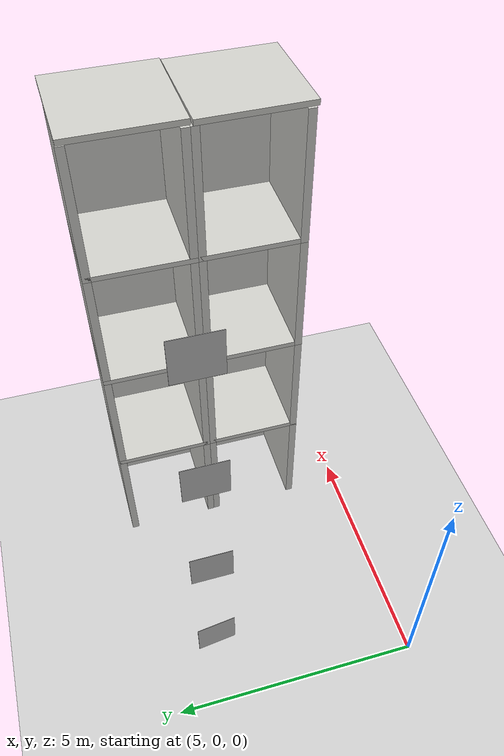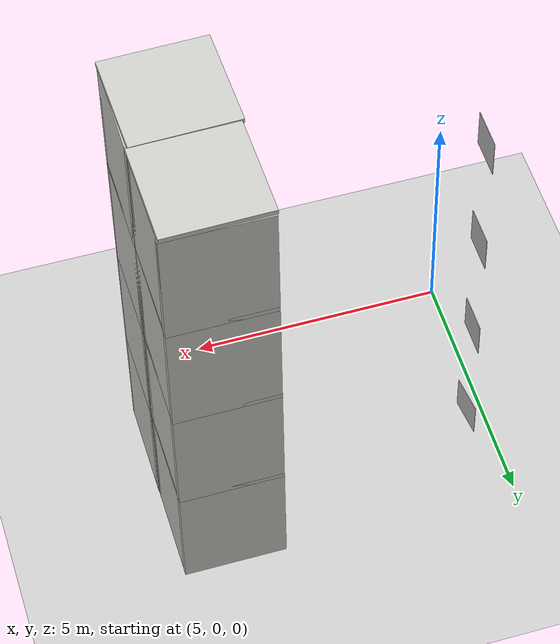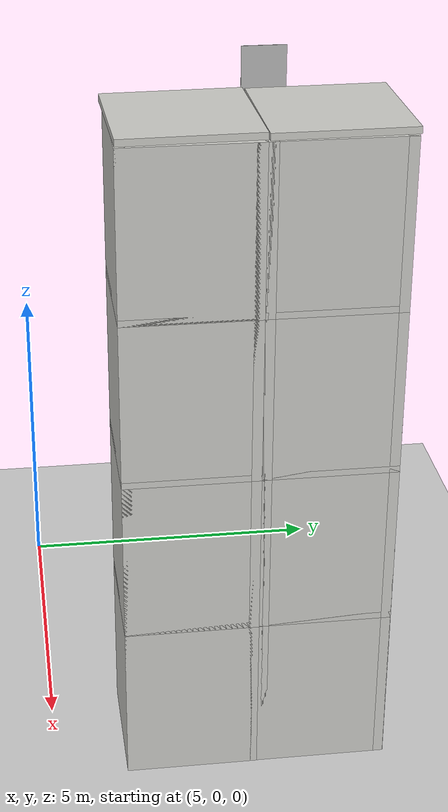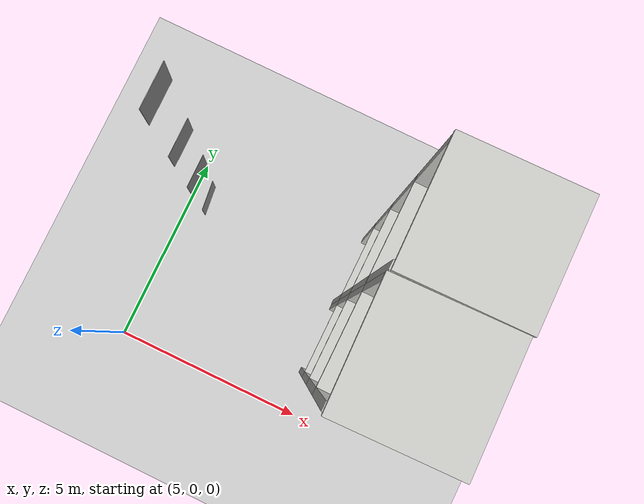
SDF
<sdf version="1.7">
 <world name="default">
  <model name="ground_plane">
   <static>1</static>
   <link name="link">
    <collision name="collision">
     <geometry><plane><normal>0 0 1</normal><size>100 100</size></plane></geometry>
     <surface>
      <contact><collide_bitmask>65535</collide_bitmask></contact>
      <friction><ode><mu>100</mu><mu2>50</mu2></ode></friction>
     </surface>
    </collision>
    <visual name="visual">
     <cast_shadows>0</cast_shadows>
     <geometry><plane><normal>0 0 1</normal><size>100 100</size></plane></geometry>
     <material>
      <script><uri>file://media/materials/scripts/gazebo.material</uri><name>Gazebo/Grey</name></script>
     </material>
    </visual>
   </link>
  </model>
  <model name="twin_4th_building_clone_clone_1">
   <link name="Floor_1">
    <pose>-1.9225 -0.6325 2.5 0 -0 0</pose>
    <visual name="Floor_1_Visual">
     <pose>0 0 0.05 0 -0 0</pose>
     <geometry><box><size>2 2 0.1</size></box></geometry>
     <material>
      <script><uri>file://media/materials/scripts/gazebo.material</uri><name>Gazebo/CeilingTiled</name></script>
      <ambient>1 1 1 1</ambient>
      <shader type="pixel"/>
      <emissive>0 0 0 1</emissive>
     </material>
     <meta><layer>1</layer></meta>
    </visual>
    <collision name="Floor_1_Collision">
     <pose>0 0 0.05 0 -0 0</pose>
     <geometry><box><size>2 2 0.1</size></box></geometry>
     <surface>
      <friction>
       <ode><mu>1</mu><mu2>1</mu2><fdir1>0 0 0</fdir1><slip1>0</slip1><slip2>0</slip2></ode>
       <torsional>
        <coefficient>1</coefficient>
        <patch_radius>0</patch_radius>
        <surface_radius>0</surface_radius>
        <use_patch_radius>1</use_patch_radius>
        <ode><slip>0</slip></ode>
       </torsional>
      </friction>
      <bounce><restitution_coefficient>0</restitution_coefficient><threshold>1e+06</threshold></bounce>
      <contact>
       <collide_without_contact>0</collide_without_contact>
       <collide_without_contact_bitmask>1</collide_without_contact_bitmask>
       <collide_bitmask>1</collide_bitmask>
       <ode>
        <soft_cfm>0</soft_cfm>
        <soft_erp>0.2</soft_erp>
        <kp>1e+13</kp>
        <kd>1</kd>
        <max_vel>0.01</max_vel>
        <min_depth>0</min_depth>
       </ode>
       <bullet>
        <split_impulse>1</split_impulse>
        <split_impulse_penetration_threshold>-0.01</split_impulse_penetration_threshold>
        <soft_cfm>0</soft_cfm>
        <soft_erp>0.2</soft_erp>
        <kp>1e+13</kp>
        <kd>1</kd>
       </bullet>
      </contact>
     </surface>
    </collision>
   </link>
   <link name="Floor_10">
    <pose>-1.9225 -0.6325 7.5 0 -0 0</pose>
    <visual name="Floor_10_Visual">
     <pose>0 0 0.05 0 -0 0</pose>
     <geometry><box><size>2 2 0.1</size></box></geometry>
     <material>
      <script><uri>file://media/materials/scripts/gazebo.material</uri><name>Gazebo/CeilingTiled</name></script>
      <ambient>1 1 1 1</ambient>
      <shader type="pixel"/>
      <emissive>0 0 0 1</emissive>
     </material>
     <meta><layer>3</layer></meta>
    </visual>
    <collision name="Floor_10_Collision">
     <pose>0 0 0.05 0 -0 0</pose>
     <geometry><box><size>2 2 0.1</size></box></geometry>
     <surface>
      <friction>
       <ode><mu>1</mu><mu2>1</mu2><fdir1>0 0 0</fdir1><slip1>0</slip1><slip2>0</slip2></ode>
       <torsional>
        <coefficient>1</coefficient>
        <patch_radius>0</patch_radius>
        <surface_radius>0</surface_radius>
        <use_patch_radius>1</use_patch_radius>
        <ode><slip>0</slip></ode>
       </torsional>
      </friction>
      <bounce><restitution_coefficient>0</restitution_coefficient><threshold>1e+06</threshold></bounce>
      <contact>
       <collide_without_contact>0</collide_without_contact>
       <collide_without_contact_bitmask>1</collide_without_contact_bitmask>
       <collide_bitmask>1</collide_bitmask>
       <ode>
        <soft_cfm>0</soft_cfm>
        <soft_erp>0.2</soft_erp>
        <kp>1e+13</kp>
        <kd>1</kd>
        <max_vel>0.01</max_vel>
        <min_depth>0</min_depth>
       </ode>
       <bullet>
        <split_impulse>1</split_impulse>
        <split_impulse_penetration_threshold>-0.01</split_impulse_penetration_threshold>
        <soft_cfm>0</soft_cfm>
        <soft_erp>0.2</soft_erp>
        <kp>1e+13</kp>
        <kd>1</kd>
       </bullet>
      </contact>
     </surface>
    </collision>
   </link>
   <link name="Floor_10_clone">
    <pose>-1.91647 -0.637292 10.0203 0 0 -1.55375</pose>
    <visual name="Floor_10_Visual">
     <pose>0 0 0.05 0 -0 0</pose>
     <geometry><box><size>2 2 0.1</size></box></geometry>
     <material>
      <script><uri>file://media/materials/scripts/gazebo.material</uri><name>Gazebo/CeilingTiled</name></script>
      <ambient>1 1 1 1</ambient>
      <shader type="pixel"/>
      <emissive>0 0 0 1</emissive>
     </material>
     <meta><layer>3</layer></meta>
    </visual>
    <collision name="Floor_10_Collision">
     <pose>0 0 0.05 0 -0 0</pose>
     <geometry><box><size>2 2 0.1</size></box></geometry>
     <surface>
      <friction>
       <ode><mu>1</mu><mu2>1</mu2><fdir1>0 0 0</fdir1><slip1>0</slip1><slip2>0</slip2></ode>
       <torsional>
        <coefficient>1</coefficient>
        <patch_radius>0</patch_radius>
        <surface_radius>0</surface_radius>
        <use_patch_radius>1</use_patch_radius>
        <ode><slip>0</slip></ode>
       </torsional>
      </friction>
      <bounce><restitution_coefficient>0</restitution_coefficient><threshold>1e+06</threshold></bounce>
      <contact>
       <collide_without_contact>0</collide_without_contact>
       <collide_without_contact_bitmask>1</collide_without_contact_bitmask>
       <collide_bitmask>1</collide_bitmask>
       <ode>
        <soft_cfm>0</soft_cfm>
        <soft_erp>0.2</soft_erp>
        <kp>1e+13</kp>
        <kd>1</kd>
        <max_vel>0.01</max_vel>
        <min_depth>0</min_depth>
       </ode>
       <bullet>
        <split_impulse>1</split_impulse>
        <split_impulse_penetration_threshold>-0.01</split_impulse_penetration_threshold>
        <soft_cfm>0</soft_cfm>
        <soft_erp>0.2</soft_erp>
        <kp>1e+13</kp>
        <kd>1</kd>
       </bullet>
      </contact>
     </surface>
    </collision>
   </link>
   <link name="Floor_10_clone_clone">
    <pose>-3.93376 -0.629613 10.0203 0 0 -3.11619</pose>
    <visual name="Floor_10_Visual">
     <pose>0 0 0.05 0 -0 0</pose>
     <geometry><box><size>2 2 0.1</size></box></geometry>
     <material>
      <script><uri>file://media/materials/scripts/gazebo.material</uri><name>Gazebo/CeilingTiled</name></script>
      <ambient>1 1 1 1</ambient>
      <shader type="pixel"/>
      <emissive>0 0 0 1</emissive>
     </material>
     <meta><layer>3</layer></meta>
    </visual>
    <collision name="Floor_10_Collision">
     <pose>0 0 0.05 0 -0 0</pose>
     <geometry><box><size>2 2 0.1</size></box></geometry>
     <surface>
      <friction>
       <ode><mu>1</mu><mu2>1</mu2><fdir1>0 0 0</fdir1><slip1>0</slip1><slip2>0</slip2></ode>
       <torsional>
        <coefficient>1</coefficient>
        <patch_radius>0</patch_radius>
        <surface_radius>0</surface_radius>
        <use_patch_radius>1</use_patch_radius>
        <ode><slip>0</slip></ode>
       </torsional>
      </friction>
      <bounce><restitution_coefficient>0</restitution_coefficient><threshold>1e+06</threshold></bounce>
      <contact>
       <collide_without_contact>0</collide_without_contact>
       <collide_without_contact_bitmask>1</collide_without_contact_bitmask>
       <collide_bitmask>1</collide_bitmask>
       <ode>
        <soft_cfm>0</soft_cfm>
        <soft_erp>0.2</soft_erp>
        <kp>1e+13</kp>
        <kd>1</kd>
        <max_vel>0.01</max_vel>
        <min_depth>0</min_depth>
       </ode>
       <bullet>
        <split_impulse>1</split_impulse>
        <split_impulse_penetration_threshold>-0.01</split_impulse_penetration_threshold>
        <soft_cfm>0</soft_cfm>
        <soft_erp>0.2</soft_erp>
        <kp>1e+13</kp>
        <kd>1</kd>
       </bullet>
      </contact>
     </surface>
    </collision>
   </link>
   <link name="Floor_9">
    <pose>-1.9225 -0.6325 5 0 -0 0</pose>
    <visual name="Floor_9_Visual">
     <pose>0 0 0.05 0 -0 0</pose>
     <geometry><box><size>2 2 0.1</size></box></geometry>
     <material>
      <script><uri>file://media/materials/scripts/gazebo.material</uri><name>Gazebo/CeilingTiled</name></script>
      <ambient>1 1 1 1</ambient>
      <shader type="pixel"/>
      <emissive>0 0 0 1</emissive>
     </material>
     <meta><layer>2</layer></meta>
    </visual>
    <collision name="Floor_9_Collision">
     <pose>0 0 0.05 0 -0 0</pose>
     <geometry><box><size>2 2 0.1</size></box></geometry>
     <surface>
      <friction>
       <ode><mu>1</mu><mu2>1</mu2><fdir1>0 0 0</fdir1><slip1>0</slip1><slip2>0</slip2></ode>
       <torsional>
        <coefficient>1</coefficient>
        <patch_radius>0</patch_radius>
        <surface_radius>0</surface_radius>
        <use_patch_radius>1</use_patch_radius>
        <ode><slip>0</slip></ode>
       </torsional>
      </friction>
      <bounce><restitution_coefficient>0</restitution_coefficient><threshold>1e+06</threshold></bounce>
      <contact>
       <collide_without_contact>0</collide_without_contact>
       <collide_without_contact_bitmask>1</collide_without_contact_bitmask>
       <collide_bitmask>1</collide_bitmask>
       <ode>
        <soft_cfm>0</soft_cfm>
        <soft_erp>0.2</soft_erp>
        <kp>1e+13</kp>
        <kd>1</kd>
        <max_vel>0.01</max_vel>
        <min_depth>0</min_depth>
       </ode>
       <bullet>
        <split_impulse>1</split_impulse>
        <split_impulse_penetration_threshold>-0.01</split_impulse_penetration_threshold>
        <soft_cfm>0</soft_cfm>
        <soft_erp>0.2</soft_erp>
        <kp>1e+13</kp>
        <kd>1</kd>
       </bullet>
      </contact>
     </surface>
    </collision>
   </link>
   <link name="Wall_13">
    <pose>-2.8475 -0.6325 0 0 0 -1.5708</pose>
    <visual name="Wall_13_Visual">
     <pose>0 0 1.25 0 -0 0</pose>
     <geometry><box><size>2 0.15 2.5</size></box></geometry>
     <material>
      <script><uri>file://media/materials/scripts/gazebo.material</uri><name>Gazebo/CeilingTiled</name></script>
      <ambient>1 1 1 1</ambient>
      <shader type="pixel"/>
      <emissive>0 0 0 1</emissive>
     </material>
     <meta><layer>0</layer></meta>
    </visual>
    <collision name="Wall_13_Collision">
     <pose>0 0 1.25 0 -0 0</pose>
     <geometry><box><size>2 0.15 2.5</size></box></geometry>
     <surface>
      <friction>
       <ode><mu>1</mu><mu2>1</mu2><fdir1>0 0 0</fdir1><slip1>0</slip1><slip2>0</slip2></ode>
       <torsional>
        <coefficient>1</coefficient>
        <patch_radius>0</patch_radius>
        <surface_radius>0</surface_radius>
        <use_patch_radius>1</use_patch_radius>
        <ode><slip>0</slip></ode>
       </torsional>
      </friction>
      <bounce><restitution_coefficient>0</restitution_coefficient><threshold>1e+06</threshold></bounce>
      <contact>
       <collide_without_contact>0</collide_without_contact>
       <collide_without_contact_bitmask>1</collide_without_contact_bitmask>
       <collide_bitmask>1</collide_bitmask>
       <ode>
        <soft_cfm>0</soft_cfm>
        <soft_erp>0.2</soft_erp>
        <kp>1e+13</kp>
        <kd>1</kd>
        <max_vel>0.01</max_vel>
        <min_depth>0</min_depth>
       </ode>
       <bullet>
        <split_impulse>1</split_impulse>
        <split_impulse_penetration_threshold>-0.01</split_impulse_penetration_threshold>
        <soft_cfm>0</soft_cfm>
        <soft_erp>0.2</soft_erp>
        <kp>1e+13</kp>
        <kd>1</kd>
       </bullet>
      </contact>
     </surface>
    </collision>
   </link>
   <link name="Wall_14">
    <pose>-1.9225 -1.5575 0 0 -0 0</pose>
    <visual name="Wall_14_Visual">
     <pose>0 0 1.25 0 -0 0</pose>
     <geometry><box><size>2 0.15 2.5</size></box></geometry>
     <material>
      <script><uri>file://media/materials/scripts/gazebo.material</uri><name>Gazebo/CeilingTiled</name></script>
      <ambient>1 1 1 1</ambient>
      <shader type="pixel"/>
     </material>
     <meta><layer>0</layer></meta>
    </visual>
    <collision name="Wall_14_Collision">
     <pose>0 0 1.25 0 -0 0</pose>
     <geometry><box><size>2 0.15 2.5</size></box></geometry>
     <surface>
      <friction>
       <ode><mu>1</mu><mu2>1</mu2><fdir1>0 0 0</fdir1><slip1>0</slip1><slip2>0</slip2></ode>
       <torsional>
        <coefficient>1</coefficient>
        <patch_radius>0</patch_radius>
        <surface_radius>0</surface_radius>
        <use_patch_radius>1</use_patch_radius>
        <ode><slip>0</slip></ode>
       </torsional>
      </friction>
      <bounce><restitution_coefficient>0</restitution_coefficient><threshold>1e+06</threshold></bounce>
      <contact>
       <collide_without_contact>0</collide_without_contact>
       <collide_without_contact_bitmask>1</collide_without_contact_bitmask>
       <collide_bitmask>1</collide_bitmask>
       <ode>
        <soft_cfm>0</soft_cfm>
        <soft_erp>0.2</soft_erp>
        <kp>1e+13</kp>
        <kd>1</kd>
        <max_vel>0.01</max_vel>
        <min_depth>0</min_depth>
       </ode>
       <bullet>
        <split_impulse>1</split_impulse>
        <split_impulse_penetration_threshold>-0.01</split_impulse_penetration_threshold>
        <soft_cfm>0</soft_cfm>
        <soft_erp>0.2</soft_erp>
        <kp>1e+13</kp>
        <kd>1</kd>
       </bullet>
      </contact>
     </surface>
    </collision>
   </link>
   <link name="Wall_15">
    <pose>-0.9975 -0.6325 0 0 -0 1.5708</pose>
    <visual name="Wall_15_Visual">
     <pose>0 0 1.25 0 -0 0</pose>
     <geometry><box><size>2 0.15 2.5</size></box></geometry>
     <material>
      <script><uri>file://media/materials/scripts/gazebo.material</uri><name>Gazebo/CeilingTiled</name></script>
      <ambient>1 1 1 1</ambient>
      <shader type="pixel"/>
     </material>
     <meta><layer>0</layer></meta>
    </visual>
    <collision name="Wall_15_Collision">
     <pose>0 0 1.25 0 -0 0</pose>
     <geometry><box><size>2 0.15 2.5</size></box></geometry>
     <surface>
      <friction>
       <ode><mu>1</mu><mu2>1</mu2><fdir1>0 0 0</fdir1><slip1>0</slip1><slip2>0</slip2></ode>
       <torsional>
        <coefficient>1</coefficient>
        <patch_radius>0</patch_radius>
        <surface_radius>0</surface_radius>
        <use_patch_radius>1</use_patch_radius>
        <ode><slip>0</slip></ode>
       </torsional>
      </friction>
      <bounce><restitution_coefficient>0</restitution_coefficient><threshold>1e+06</threshold></bounce>
      <contact>
       <collide_without_contact>0</collide_without_contact>
       <collide_without_contact_bitmask>1</collide_without_contact_bitmask>
       <collide_bitmask>1</collide_bitmask>
       <ode>
        <soft_cfm>0</soft_cfm>
        <soft_erp>0.2</soft_erp>
        <kp>1e+13</kp>
        <kd>1</kd>
        <max_vel>0.01</max_vel>
        <min_depth>0</min_depth>
       </ode>
       <bullet>
        <split_impulse>1</split_impulse>
        <split_impulse_penetration_threshold>-0.01</split_impulse_penetration_threshold>
        <soft_cfm>0</soft_cfm>
        <soft_erp>0.2</soft_erp>
        <kp>1e+13</kp>
        <kd>1</kd>
       </bullet>
      </contact>
     </surface>
    </collision>
   </link>
   <link name="Wall_17">
    <pose>-2.8475 -0.6325 2.5 0 0 -1.5708</pose>
    <visual name="Wall_17_Visual">
     <pose>0 0 1.25 0 -0 0</pose>
     <geometry><box><size>2 0.15 2.5</size></box></geometry>
     <material>
      <script><uri>file://media/materials/scripts/gazebo.material</uri><name>Gazebo/CeilingTiled</name></script>
      <ambient>1 1 1 1</ambient>
      <shader type="pixel"/>
      <emissive>0 0 0 1</emissive>
     </material>
     <meta><layer>1</layer></meta>
    </visual>
    <collision name="Wall_17_Collision">
     <pose>0 0 1.25 0 -0 0</pose>
     <geometry><box><size>2 0.15 2.5</size></box></geometry>
     <surface>
      <friction>
       <ode><mu>1</mu><mu2>1</mu2><fdir1>0 0 0</fdir1><slip1>0</slip1><slip2>0</slip2></ode>
       <torsional>
        <coefficient>1</coefficient>
        <patch_radius>0</patch_radius>
        <surface_radius>0</surface_radius>
        <use_patch_radius>1</use_patch_radius>
        <ode><slip>0</slip></ode>
       </torsional>
      </friction>
      <bounce><restitution_coefficient>0</restitution_coefficient><threshold>1e+06</threshold></bounce>
      <contact>
       <collide_without_contact>0</collide_without_contact>
       <collide_without_contact_bitmask>1</collide_without_contact_bitmask>
       <collide_bitmask>1</collide_bitmask>
       <ode>
        <soft_cfm>0</soft_cfm>
        <soft_erp>0.2</soft_erp>
        <kp>1e+13</kp>
        <kd>1</kd>
        <max_vel>0.01</max_vel>
        <min_depth>0</min_depth>
       </ode>
       <bullet>
        <split_impulse>1</split_impulse>
        <split_impulse_penetration_threshold>-0.01</split_impulse_penetration_threshold>
        <soft_cfm>0</soft_cfm>
        <soft_erp>0.2</soft_erp>
        <kp>1e+13</kp>
        <kd>1</kd>
       </bullet>
      </contact>
     </surface>
    </collision>
   </link>
   <link name="Wall_18">
    <pose>-1.9225 -1.5575 2.5 0 -0 0</pose>
    <visual name="Wall_18_Visual">
     <pose>0 0 1.25 0 -0 0</pose>
     <geometry><box><size>2 0.15 2.5</size></box></geometry>
     <material>
      <script><uri>file://media/materials/scripts/gazebo.material</uri><name>Gazebo/CeilingTiled</name></script>
      <ambient>1 1 1 1</ambient>
      <shader type="pixel"/>
      <emissive>0 0 0 1</emissive>
     </material>
     <meta><layer>1</layer></meta>
    </visual>
    <collision name="Wall_18_Collision">
     <pose>0 0 1.25 0 -0 0</pose>
     <geometry><box><size>2 0.15 2.5</size></box></geometry>
     <surface>
      <friction>
       <ode><mu>1</mu><mu2>1</mu2><fdir1>0 0 0</fdir1><slip1>0</slip1><slip2>0</slip2></ode>
       <torsional>
        <coefficient>1</coefficient>
        <patch_radius>0</patch_radius>
        <surface_radius>0</surface_radius>
        <use_patch_radius>1</use_patch_radius>
        <ode><slip>0</slip></ode>
       </torsional>
      </friction>
      <bounce><restitution_coefficient>0</restitution_coefficient><threshold>1e+06</threshold></bounce>
      <contact>
       <collide_without_contact>0</collide_without_contact>
       <collide_without_contact_bitmask>1</collide_without_contact_bitmask>
       <collide_bitmask>1</collide_bitmask>
       <ode>
        <soft_cfm>0</soft_cfm>
        <soft_erp>0.2</soft_erp>
        <kp>1e+13</kp>
        <kd>1</kd>
        <max_vel>0.01</max_vel>
        <min_depth>0</min_depth>
       </ode>
       <bullet>
        <split_impulse>1</split_impulse>
        <split_impulse_penetration_threshold>-0.01</split_impulse_penetration_threshold>
        <soft_cfm>0</soft_cfm>
        <soft_erp>0.2</soft_erp>
        <kp>1e+13</kp>
        <kd>1</kd>
       </bullet>
      </contact>
     </surface>
    </collision>
   </link>
   <link name="Wall_19">
    <pose>-0.9975 -0.6325 2.5 0 -0 1.5708</pose>
    <visual name="Wall_19_Visual">
     <pose>0 0 1.25 0 -0 0</pose>
     <geometry><box><size>2 0.15 2.5</size></box></geometry>
     <material>
      <script><uri>file://media/materials/scripts/gazebo.material</uri><name>Gazebo/CeilingTiled</name></script>
      <ambient>1 1 1 1</ambient>
      <shader type="pixel"/>
     </material>
     <meta><layer>1</layer></meta>
    </visual>
    <collision name="Wall_19_Collision">
     <pose>0 0 1.25 0 -0 0</pose>
     <geometry><box><size>2 0.15 2.5</size></box></geometry>
     <surface>
      <friction>
       <ode><mu>1</mu><mu2>1</mu2><fdir1>0 0 0</fdir1><slip1>0</slip1><slip2>0</slip2></ode>
       <torsional>
        <coefficient>1</coefficient>
        <patch_radius>0</patch_radius>
        <surface_radius>0</surface_radius>
        <use_patch_radius>1</use_patch_radius>
        <ode><slip>0</slip></ode>
       </torsional>
      </friction>
      <bounce><restitution_coefficient>0</restitution_coefficient><threshold>1e+06</threshold></bounce>
      <contact>
       <collide_without_contact>0</collide_without_contact>
       <collide_without_contact_bitmask>1</collide_without_contact_bitmask>
       <collide_bitmask>1</collide_bitmask>
       <ode>
        <soft_cfm>0</soft_cfm>
        <soft_erp>0.2</soft_erp>
        <kp>1e+13</kp>
        <kd>1</kd>
        <max_vel>0.01</max_vel>
        <min_depth>0</min_depth>
       </ode>
       <bullet>
        <split_impulse>1</split_impulse>
        <split_impulse_penetration_threshold>-0.01</split_impulse_penetration_threshold>
        <soft_cfm>0</soft_cfm>
        <soft_erp>0.2</soft_erp>
        <kp>1e+13</kp>
        <kd>1</kd>
       </bullet>
      </contact>
     </surface>
    </collision>
   </link>
   <link name="Wall_40">
    <pose>-2.8475 -0.6325 5 0 0 -1.5708</pose>
    <visual name="Wall_40_Visual">
     <pose>0 0 1.25 0 -0 0</pose>
     <geometry><box><size>2 0.15 2.5</size></box></geometry>
     <material>
      <script><uri>file://media/materials/scripts/gazebo.material</uri><name>Gazebo/CeilingTiled</name></script>
      <ambient>1 1 1 1</ambient>
      <shader type="pixel"/>
      <emissive>0 0 0 1</emissive>
     </material>
     <meta><layer>2</layer></meta>
    </visual>
    <collision name="Wall_40_Collision">
     <pose>0 0 1.25 0 -0 0</pose>
     <geometry><box><size>2 0.15 2.5</size></box></geometry>
     <surface>
      <friction>
       <ode><mu>1</mu><mu2>1</mu2><fdir1>0 0 0</fdir1><slip1>0</slip1><slip2>0</slip2></ode>
       <torsional>
        <coefficient>1</coefficient>
        <patch_radius>0</patch_radius>
        <surface_radius>0</surface_radius>
        <use_patch_radius>1</use_patch_radius>
        <ode><slip>0</slip></ode>
       </torsional>
      </friction>
      <bounce><restitution_coefficient>0</restitution_coefficient><threshold>1e+06</threshold></bounce>
      <contact>
       <collide_without_contact>0</collide_without_contact>
       <collide_without_contact_bitmask>1</collide_without_contact_bitmask>
       <collide_bitmask>1</collide_bitmask>
       <ode>
        <soft_cfm>0</soft_cfm>
        <soft_erp>0.2</soft_erp>
        <kp>1e+13</kp>
        <kd>1</kd>
        <max_vel>0.01</max_vel>
        <min_depth>0</min_depth>
       </ode>
       <bullet>
        <split_impulse>1</split_impulse>
        <split_impulse_penetration_threshold>-0.01</split_impulse_penetration_threshold>
        <soft_cfm>0</soft_cfm>
        <soft_erp>0.2</soft_erp>
        <kp>1e+13</kp>
        <kd>1</kd>
       </bullet>
      </contact>
     </surface>
    </collision>
   </link>
   <link name="Wall_41">
    <pose>-1.9225 -1.5575 5 0 -0 0</pose>
    <visual name="Wall_41_Visual">
     <pose>0 0 1.25 0 -0 0</pose>
     <geometry><box><size>2 0.15 2.5</size></box></geometry>
     <material>
      <script><uri>file://media/materials/scripts/gazebo.material</uri><name>Gazebo/CeilingTiled</name></script>
      <ambient>1 1 1 1</ambient>
      <shader type="pixel"/>
      <emissive>0 0 0 1</emissive>
     </material>
     <meta><layer>2</layer></meta>
    </visual>
    <collision name="Wall_41_Collision">
     <pose>0 0 1.25 0 -0 0</pose>
     <geometry><box><size>2 0.15 2.5</size></box></geometry>
     <surface>
      <friction>
       <ode><mu>1</mu><mu2>1</mu2><fdir1>0 0 0</fdir1><slip1>0</slip1><slip2>0</slip2></ode>
       <torsional>
        <coefficient>1</coefficient>
        <patch_radius>0</patch_radius>
        <surface_radius>0</surface_radius>
        <use_patch_radius>1</use_patch_radius>
        <ode><slip>0</slip></ode>
       </torsional>
      </friction>
      <bounce><restitution_coefficient>0</restitution_coefficient><threshold>1e+06</threshold></bounce>
      <contact>
       <collide_without_contact>0</collide_without_contact>
       <collide_without_contact_bitmask>1</collide_without_contact_bitmask>
       <collide_bitmask>1</collide_bitmask>
       <ode>
        <soft_cfm>0</soft_cfm>
        <soft_erp>0.2</soft_erp>
        <kp>1e+13</kp>
        <kd>1</kd>
        <max_vel>0.01</max_vel>
        <min_depth>0</min_depth>
       </ode>
       <bullet>
        <split_impulse>1</split_impulse>
        <split_impulse_penetration_threshold>-0.01</split_impulse_penetration_threshold>
        <soft_cfm>0</soft_cfm>
        <soft_erp>0.2</soft_erp>
        <kp>1e+13</kp>
        <kd>1</kd>
       </bullet>
      </contact>
     </surface>
    </collision>
   </link>
   <link name="Wall_42">
    <pose>-0.9975 -0.6325 5 0 -0 1.5708</pose>
    <visual name="Wall_42_Visual">
     <pose>0 0 1.25 0 -0 0</pose>
     <geometry><box><size>2 0.15 2.5</size></box></geometry>
     <material>
      <script><uri>file://media/materials/scripts/gazebo.material</uri><name>Gazebo/CeilingTiled</name></script>
      <ambient>1 1 1 1</ambient>
      <shader type="pixel"/>
     </material>
     <meta><layer>2</layer></meta>
    </visual>
    <collision name="Wall_42_Collision">
     <pose>0 0 1.25 0 -0 0</pose>
     <geometry><box><size>2 0.15 2.5</size></box></geometry>
     <surface>
      <friction>
       <ode><mu>1</mu><mu2>1</mu2><fdir1>0 0 0</fdir1><slip1>0</slip1><slip2>0</slip2></ode>
       <torsional>
        <coefficient>1</coefficient>
        <patch_radius>0</patch_radius>
        <surface_radius>0</surface_radius>
        <use_patch_radius>1</use_patch_radius>
        <ode><slip>0</slip></ode>
       </torsional>
      </friction>
      <bounce><restitution_coefficient>0</restitution_coefficient><threshold>1e+06</threshold></bounce>
      <contact>
       <collide_without_contact>0</collide_without_contact>
       <collide_without_contact_bitmask>1</collide_without_contact_bitmask>
       <collide_bitmask>1</collide_bitmask>
       <ode>
        <soft_cfm>0</soft_cfm>
        <soft_erp>0.2</soft_erp>
        <kp>1e+13</kp>
        <kd>1</kd>
        <max_vel>0.01</max_vel>
        <min_depth>0</min_depth>
       </ode>
       <bullet>
        <split_impulse>1</split_impulse>
        <split_impulse_penetration_threshold>-0.01</split_impulse_penetration_threshold>
        <soft_cfm>0</soft_cfm>
        <soft_erp>0.2</soft_erp>
        <kp>1e+13</kp>
        <kd>1</kd>
       </bullet>
      </contact>
     </surface>
    </collision>
   </link>
   <link name="Wall_43">
    <pose>-2.8475 -0.6325 7.5 0 0 -1.5708</pose>
    <visual name="Wall_43_Visual">
     <pose>0 0 1.25 0 -0 0</pose>
     <geometry><box><size>2 0.15 2.5</size></box></geometry>
     <material>
      <script><uri>file://media/materials/scripts/gazebo.material</uri><name>Gazebo/CeilingTiled</name></script>
      <ambient>1 1 1 1</ambient>
      <shader type="pixel"/>
      <emissive>0 0 0 1</emissive>
     </material>
     <meta><layer>3</layer></meta>
    </visual>
    <collision name="Wall_43_Collision">
     <pose>0 0 1.25 0 -0 0</pose>
     <geometry><box><size>2 0.15 2.5</size></box></geometry>
     <surface>
      <friction>
       <ode><mu>1</mu><mu2>1</mu2><fdir1>0 0 0</fdir1><slip1>0</slip1><slip2>0</slip2></ode>
       <torsional>
        <coefficient>1</coefficient>
        <patch_radius>0</patch_radius>
        <surface_radius>0</surface_radius>
        <use_patch_radius>1</use_patch_radius>
        <ode><slip>0</slip></ode>
       </torsional>
      </friction>
      <bounce><restitution_coefficient>0</restitution_coefficient><threshold>1e+06</threshold></bounce>
      <contact>
       <collide_without_contact>0</collide_without_contact>
       <collide_without_contact_bitmask>1</collide_without_contact_bitmask>
       <collide_bitmask>1</collide_bitmask>
       <ode>
        <soft_cfm>0</soft_cfm>
        <soft_erp>0.2</soft_erp>
        <kp>1e+13</kp>
        <kd>1</kd>
        <max_vel>0.01</max_vel>
        <min_depth>0</min_depth>
       </ode>
       <bullet>
        <split_impulse>1</split_impulse>
        <split_impulse_penetration_threshold>-0.01</split_impulse_penetration_threshold>
        <soft_cfm>0</soft_cfm>
        <soft_erp>0.2</soft_erp>
        <kp>1e+13</kp>
        <kd>1</kd>
       </bullet>
      </contact>
     </surface>
    </collision>
   </link>
   <link name="Wall_44">
    <pose>-1.9225 -1.5575 7.5 0 -0 0</pose>
    <visual name="Wall_44_Visual">
     <pose>0 0 1.25 0 -0 0</pose>
     <geometry><box><size>2 0.15 2.5</size></box></geometry>
     <material>
      <script><uri>file://media/materials/scripts/gazebo.material</uri><name>Gazebo/CeilingTiled</name></script>
      <ambient>1 1 1 1</ambient>
      <shader type="pixel"/>
      <emissive>0 0 0 1</emissive>
     </material>
     <meta><layer>3</layer></meta>
    </visual>
    <collision name="Wall_44_Collision">
     <pose>0 0 1.25 0 -0 0</pose>
     <geometry><box><size>2 0.15 2.5</size></box></geometry>
     <surface>
      <friction>
       <ode><mu>1</mu><mu2>1</mu2><fdir1>0 0 0</fdir1><slip1>0</slip1><slip2>0</slip2></ode>
       <torsional>
        <coefficient>1</coefficient>
        <patch_radius>0</patch_radius>
        <surface_radius>0</surface_radius>
        <use_patch_radius>1</use_patch_radius>
        <ode><slip>0</slip></ode>
       </torsional>
      </friction>
      <bounce><restitution_coefficient>0</restitution_coefficient><threshold>1e+06</threshold></bounce>
      <contact>
       <collide_without_contact>0</collide_without_contact>
       <collide_without_contact_bitmask>1</collide_without_contact_bitmask>
       <collide_bitmask>1</collide_bitmask>
       <ode>
        <soft_cfm>0</soft_cfm>
        <soft_erp>0.2</soft_erp>
        <kp>1e+13</kp>
        <kd>1</kd>
        <max_vel>0.01</max_vel>
        <min_depth>0</min_depth>
       </ode>
       <bullet>
        <split_impulse>1</split_impulse>
        <split_impulse_penetration_threshold>-0.01</split_impulse_penetration_threshold>
        <soft_cfm>0</soft_cfm>
        <soft_erp>0.2</soft_erp>
        <kp>1e+13</kp>
        <kd>1</kd>
       </bullet>
      </contact>
     </surface>
    </collision>
   </link>
   <link name="Wall_45">
    <pose>-0.9975 -0.6325 7.5 0 -0 1.5708</pose>
    <visual name="Wall_45_Visual">
     <pose>0 0 1.25 0 -0 0</pose>
     <geometry><box><size>2 0.15 2.5</size></box></geometry>
     <material>
      <script><uri>file://media/materials/scripts/gazebo.material</uri><name>Gazebo/CeilingTiled</name></script>
      <ambient>1 1 1 1</ambient>
      <shader type="pixel"/>
     </material>
     <meta><layer>3</layer></meta>
    </visual>
    <collision name="Wall_45_Collision">
     <pose>0 0 1.25 0 -0 0</pose>
     <geometry><box><size>2 0.15 2.5</size></box></geometry>
     <surface>
      <friction>
       <ode><mu>1</mu><mu2>1</mu2><fdir1>0 0 0</fdir1><slip1>0</slip1><slip2>0</slip2></ode>
       <torsional>
        <coefficient>1</coefficient>
        <patch_radius>0</patch_radius>
        <surface_radius>0</surface_radius>
        <use_patch_radius>1</use_patch_radius>
        <ode><slip>0</slip></ode>
       </torsional>
      </friction>
      <bounce><restitution_coefficient>0</restitution_coefficient><threshold>1e+06</threshold></bounce>
      <contact>
       <collide_without_contact>0</collide_without_contact>
       <collide_without_contact_bitmask>1</collide_without_contact_bitmask>
       <collide_bitmask>1</collide_bitmask>
       <ode>
        <soft_cfm>0</soft_cfm>
        <soft_erp>0.2</soft_erp>
        <kp>1e+13</kp>
        <kd>1</kd>
        <max_vel>0.01</max_vel>
        <min_depth>0</min_depth>
       </ode>
       <bullet>
        <split_impulse>1</split_impulse>
        <split_impulse_penetration_threshold>-0.01</split_impulse_penetration_threshold>
        <soft_cfm>0</soft_cfm>
        <soft_erp>0.2</soft_erp>
        <kp>1e+13</kp>
        <kd>1</kd>
       </bullet>
      </contact>
     </surface>
    </collision>
   </link>
   <model name="4th_building">
    <pose>-1.99386 -0.00682 0 0 -0 0</pose>
    <link name="Floor_1">
     <collision name="Floor_1_Collision">
      <geometry><box><size>2 2 0.1</size></box></geometry>
      <pose>0 0 0.05 0 -0 0</pose>
     </collision>
     <visual name="Floor_1_Visual">
      <pose>0 0 0.05 0 -0 0</pose>
      <geometry><box><size>2 2 0.1</size></box></geometry>
      <material>
       <script><uri>file://media/materials/scripts/gazebo.material</uri><name>Gazebo/CeilingTiled</name></script>
       <ambient>1 1 1 1</ambient>
      </material>
      <meta><layer>1</layer></meta>
     </visual>
     <pose>-1.9225 -0.6325 2.5 0 -0 0</pose>
    </link>
    <link name="Floor_10">
     <collision name="Floor_10_Collision">
      <geometry><box><size>2 2 0.1</size></box></geometry>
      <pose>0 0 0.05 0 -0 0</pose>
     </collision>
     <visual name="Floor_10_Visual">
      <pose>0 0 0.05 0 -0 0</pose>
      <geometry><box><size>2 2 0.1</size></box></geometry>
      <material>
       <script><uri>file://media/materials/scripts/gazebo.material</uri><name>Gazebo/CeilingTiled</name></script>
       <ambient>1 1 1 1</ambient>
      </material>
      <meta><layer>3</layer></meta>
     </visual>
     <pose>-1.9225 -0.6325 7.5 0 -0 0</pose>
    </link>
    <link name="Floor_9">
     <collision name="Floor_9_Collision">
      <geometry><box><size>2 2 0.1</size></box></geometry>
      <pose>0 0 0.05 0 -0 0</pose>
     </collision>
     <visual name="Floor_9_Visual">
      <pose>0 0 0.05 0 -0 0</pose>
      <geometry><box><size>2 2 0.1</size></box></geometry>
      <material>
       <script><uri>file://media/materials/scripts/gazebo.material</uri><name>Gazebo/CeilingTiled</name></script>
       <ambient>1 1 1 1</ambient>
      </material>
      <meta><layer>2</layer></meta>
     </visual>
     <pose>-1.9225 -0.6325 5 0 -0 0</pose>
    </link>
    <link name="Wall_13">
     <collision name="Wall_13_Collision">
      <geometry><box><size>2 0.15 2.5</size></box></geometry>
      <pose>0 0 1.25 0 -0 0</pose>
     </collision>
     <visual name="Wall_13_Visual">
      <pose>0 0 1.25 0 -0 0</pose>
      <geometry><box><size>2 0.15 2.5</size></box></geometry>
      <material>
       <script><uri>file://media/materials/scripts/gazebo.material</uri><name>Gazebo/CeilingTiled</name></script>
       <ambient>1 1 1 1</ambient>
      </material>
      <meta><layer>0</layer></meta>
     </visual>
     <pose>-2.8475 -0.6325 0 0 -0 -1.5708</pose>
    </link>
    <link name="Wall_14">
     <collision name="Wall_14_Collision">
      <geometry><box><size>2 0.15 2.5</size></box></geometry>
      <pose>0 0 1.25 0 -0 0</pose>
     </collision>
     <visual name="Wall_14_Visual">
      <pose>0 0 1.25 0 -0 0</pose>
      <geometry><box><size>2 0.15 2.5</size></box></geometry>
      <material>
       <script><uri>file://media/materials/scripts/gazebo.material</uri><name>Gazebo/CeilingTiled</name></script>
       <ambient>1 1 1 1</ambient>
      </material>
      <meta><layer>0</layer></meta>
     </visual>
     <pose>-1.9225 -1.5575 0 0 -0 0</pose>
    </link>
    <link name="Wall_15">
     <collision name="Wall_15_Collision">
      <geometry><box><size>2 0.15 2.5</size></box></geometry>
      <pose>0 0 1.25 0 -0 0</pose>
     </collision>
     <visual name="Wall_15_Visual">
      <pose>0 0 1.25 0 -0 0</pose>
      <geometry><box><size>2 0.15 2.5</size></box></geometry>
      <material>
       <script><uri>file://media/materials/scripts/gazebo.material</uri><name>Gazebo/CeilingTiled</name></script>
       <ambient>1 1 1 1</ambient>
      </material>
      <meta><layer>0</layer></meta>
     </visual>
     <pose>-0.9975 -0.6325 0 0 -0 1.5708</pose>
    </link>
    <link name="Wall_17">
     <collision name="Wall_17_Collision">
      <geometry><box><size>2 0.15 2.5</size></box></geometry>
      <pose>0 0 1.25 0 -0 0</pose>
     </collision>
     <visual name="Wall_17_Visual">
      <pose>0 0 1.25 0 -0 0</pose>
      <geometry><box><size>2 0.15 2.5</size></box></geometry>
      <material>
       <script><uri>file://media/materials/scripts/gazebo.material</uri><name>Gazebo/CeilingTiled</name></script>
       <ambient>1 1 1 1</ambient>
      </material>
      <meta><layer>1</layer></meta>
     </visual>
     <pose>-2.8475 -0.6325 2.5 0 -0 -1.5708</pose>
    </link>
    <link name="Wall_18">
     <collision name="Wall_18_Collision">
      <geometry><box><size>2 0.15 2.5</size></box></geometry>
      <pose>0 0 1.25 0 -0 0</pose>
     </collision>
     <visual name="Wall_18_Visual">
      <pose>0 0 1.25 0 -0 0</pose>
      <geometry><box><size>2 0.15 2.5</size></box></geometry>
      <material>
       <script><uri>file://media/materials/scripts/gazebo.material</uri><name>Gazebo/CeilingTiled</name></script>
       <ambient>1 1 1 1</ambient>
      </material>
      <meta><layer>1</layer></meta>
     </visual>
     <pose>-1.9225 -1.5575 2.5 0 -0 0</pose>
    </link>
    <link name="Wall_19">
     <collision name="Wall_19_Collision">
      <geometry><box><size>2 0.15 2.5</size></box></geometry>
      <pose>0 0 1.25 0 -0 0</pose>
     </collision>
     <visual name="Wall_19_Visual">
      <pose>0 0 1.25 0 -0 0</pose>
      <geometry><box><size>2 0.15 2.5</size></box></geometry>
      <material>
       <script><uri>file://media/materials/scripts/gazebo.material</uri><name>Gazebo/CeilingTiled</name></script>
       <ambient>1 1 1 1</ambient>
      </material>
      <meta><layer>1</layer></meta>
     </visual>
     <pose>-0.9975 -0.6325 2.5 0 -0 1.5708</pose>
    </link>
    <link name="Wall_40">
     <collision name="Wall_40_Collision">
      <geometry><box><size>2 0.15 2.5</size></box></geometry>
      <pose>0 0 1.25 0 -0 0</pose>
     </collision>
     <visual name="Wall_40_Visual">
      <pose>0 0 1.25 0 -0 0</pose>
      <geometry><box><size>2 0.15 2.5</size></box></geometry>
      <material>
       <script><uri>file://media/materials/scripts/gazebo.material</uri><name>Gazebo/CeilingTiled</name></script>
       <ambient>1 1 1 1</ambient>
      </material>
      <meta><layer>2</layer></meta>
     </visual>
     <pose>-2.8475 -0.6325 5 0 -0 -1.5708</pose>
    </link>
    <link name="Wall_41">
     <collision name="Wall_41_Collision">
      <geometry><box><size>2 0.15 2.5</size></box></geometry>
      <pose>0 0 1.25 0 -0 0</pose>
     </collision>
     <visual name="Wall_41_Visual">
      <pose>0 0 1.25 0 -0 0</pose>
      <geometry><box><size>2 0.15 2.5</size></box></geometry>
      <material>
       <script><uri>file://media/materials/scripts/gazebo.material</uri><name>Gazebo/CeilingTiled</name></script>
       <ambient>1 1 1 1</ambient>
      </material>
      <meta><layer>2</layer></meta>
     </visual>
     <pose>-1.9225 -1.5575 5 0 -0 0</pose>
    </link>
    <link name="Wall_42">
     <collision name="Wall_42_Collision">
      <geometry><box><size>2 0.15 2.5</size></box></geometry>
      <pose>0 0 1.25 0 -0 0</pose>
     </collision>
     <visual name="Wall_42_Visual">
      <pose>0 0 1.25 0 -0 0</pose>
      <geometry><box><size>2 0.15 2.5</size></box></geometry>
      <material>
       <script><uri>file://media/materials/scripts/gazebo.material</uri><name>Gazebo/CeilingTiled</name></script>
       <ambient>1 1 1 1</ambient>
      </material>
      <meta><layer>2</layer></meta>
     </visual>
     <pose>-0.9975 -0.6325 5 0 -0 1.5708</pose>
    </link>
    <link name="Wall_43">
     <collision name="Wall_43_Collision">
      <geometry><box><size>2 0.15 2.5</size></box></geometry>
      <pose>0 0 1.25 0 -0 0</pose>
     </collision>
     <visual name="Wall_43_Visual">
      <pose>0 0 1.25 0 -0 0</pose>
      <geometry><box><size>2 0.15 2.5</size></box></geometry>
      <material>
       <script><uri>file://media/materials/scripts/gazebo.material</uri><name>Gazebo/CeilingTiled</name></script>
       <ambient>1 1 1 1</ambient>
      </material>
      <meta><layer>3</layer></meta>
     </visual>
     <pose>-2.8475 -0.6325 7.5 0 -0 -1.5708</pose>
    </link>
    <link name="Wall_44">
     <collision name="Wall_44_Collision">
      <geometry><box><size>2 0.15 2.5</size></box></geometry>
      <pose>0 0 1.25 0 -0 0</pose>
     </collision>
     <visual name="Wall_44_Visual">
      <pose>0 0 1.25 0 -0 0</pose>
      <geometry><box><size>2 0.15 2.5</size></box></geometry>
      <material>
       <script><uri>file://media/materials/scripts/gazebo.material</uri><name>Gazebo/CeilingTiled</name></script>
       <ambient>1 1 1 1</ambient>
      </material>
      <meta><layer>3</layer></meta>
     </visual>
     <pose>-1.9225 -1.5575 7.5 0 -0 0</pose>
    </link>
    <link name="Wall_45">
     <collision name="Wall_45_Collision">
      <geometry><box><size>2 0.15 2.5</size></box></geometry>
      <pose>0 0 1.25 0 -0 0</pose>
     </collision>
     <visual name="Wall_45_Visual">
      <pose>0 0 1.25 0 -0 0</pose>
      <geometry><box><size>2 0.15 2.5</size></box></geometry>
      <material>
       <script><uri>file://media/materials/scripts/gazebo.material</uri><name>Gazebo/CeilingTiled</name></script>
       <ambient>1 1 1 1</ambient>
      </material>
      <meta><layer>3</layer></meta>
     </visual>
     <pose>-0.9975 -0.6325 7.5 0 -0 1.5708</pose>
    </link>
    <static>1</static>
   </model>
   <joint name="Wall_13_JOINT_4" type="revolute">
    <parent>Wall_13</parent>
    <child>4th_building::Wall_15</child>
    <axis>
     <xyz>1 0 0</xyz>
     <limit>
      <lower>-1.79769e+308</lower>
      <upper>1.79769e+308</upper>
      <effort>-1</effort>
      <velocity>-1</velocity>
     </limit>
     <dynamics>
      <spring_reference>0</spring_reference>
      <spring_stiffness>0</spring_stiffness>
      <damping>0</damping>
      <friction>0</friction>
     </dynamics>
    </axis>
    <physics>
     <ode><limit><cfm>0</cfm><erp>0.2</erp></limit><suspension><cfm>0</cfm><erp>0.2</erp></suspension></ode>
    </physics>
   </joint>
   <joint name="Wall_17_JOINT_3" type="revolute">
    <parent>Wall_17</parent>
    <child>4th_building::Wall_19</child>
    <axis>
     <xyz>1 0 0</xyz>
     <limit>
      <lower>-1.79769e+308</lower>
      <upper>1.79769e+308</upper>
      <effort>-1</effort>
      <velocity>-1</velocity>
     </limit>
     <dynamics>
      <spring_reference>0</spring_reference>
      <spring_stiffness>0</spring_stiffness>
      <damping>0</damping>
      <friction>0</friction>
     </dynamics>
    </axis>
    <physics>
     <ode><limit><cfm>0</cfm><erp>0.2</erp></limit><suspension><cfm>0</cfm><erp>0.2</erp></suspension></ode>
    </physics>
   </joint>
   <joint name="Wall_40_JOINT_2" type="revolute">
    <parent>Wall_40</parent>
    <child>4th_building::Wall_42</child>
    <axis>
     <xyz>1 0 0</xyz>
     <limit>
      <lower>-1.79769e+308</lower>
      <upper>1.79769e+308</upper>
      <effort>-1</effort>
      <velocity>-1</velocity>
     </limit>
     <dynamics>
      <spring_reference>0</spring_reference>
      <spring_stiffness>0</spring_stiffness>
      <damping>0</damping>
      <friction>0</friction>
     </dynamics>
    </axis>
    <physics>
     <ode><limit><cfm>0</cfm><erp>0.2</erp></limit><suspension><cfm>0</cfm><erp>0.2</erp></suspension></ode>
    </physics>
   </joint>
   <joint name="Wall_43_JOINT_1" type="fixed">
    <parent>Wall_43</parent>
    <child>4th_building::Wall_45</child>
    <physics>
     <ode><limit><cfm>0</cfm><erp>0.2</erp></limit><suspension><cfm>0</cfm><erp>0.2</erp></suspension></ode>
    </physics>
   </joint>
   <static>1</static>
   <pose>10 5.99999 0 0 -0 1.57</pose>
  </model>
  <model name="WayPoint5_prac">
   <static>1</static>
   <link name="link">
    <collision name="collision"><geometry><box><size>0.75 0.01 0.75</size></box></geometry></collision>
    <visual name="visual">
     <geometry><box><size>0.75 0.01 0.75</size></box></geometry>
     <material>
      <script>
       <uri>model://WayPoint5_prac/materials/scripts</uri>
       <uri>model://WayPoint5_prac/materials/textures</uri>
       <name>vrc/WayPoint5_prac</name>
      </script>
     </material>
    </visual>
   </link>
   <pose>5.7 4 1.65 0 0 -1.45663</pose>
  </model>
  <model name="WayPoint5_prac2">
   <static>1</static>
   <link name="link">
    <collision name="collision"><geometry><box><size>0.75 0.01 0.75</size></box></geometry></collision>
    <visual name="visual">
     <geometry><box><size>0.75 0.01 0.75</size></box></geometry>
     <material>
      <script>
       <uri>model://WayPoint5_prac2/materials/scripts</uri>
       <uri>model://WayPoint5_prac2/materials/textures</uri>
       <name>vrc/WayPoint5_prac2</name>
      </script>
     </material>
    </visual>
   </link>
   <pose>5.7 4 4.2 0 0 -1.57</pose>
  </model>
  <model name="WayPoint6_prac">
   <static>1</static>
   <link name="link">
    <collision name="collision"><geometry><box><size>0.75 0.01 0.75</size></box></geometry></collision>
    <visual name="visual">
     <geometry><box><size>0.75 0.01 0.75</size></box></geometry>
     <material>
      <script>
       <uri>model://WayPoint6_prac/materials/scripts</uri>
       <uri>model://WayPoint6_prac/materials/textures</uri>
       <name>vrc/WayPoint6_prac</name>
      </script>
     </material>
    </visual>
   </link>
   <pose>5.7 4 9.25 0 0 -1.57</pose>
  </model>
  <model name="WayPoint9_prac">
   <static>1</static>
   <link name="link">
    <collision name="collision"><geometry><box><size>0.75 0.01 0.75</size></box></geometry></collision>
    <visual name="visual">
     <geometry><box><size>0.75 0.01 0.75</size></box></geometry>
     <material>
      <script>
       <uri>model://WayPoint9_prac/materials/scripts</uri>
       <uri>model://WayPoint9_prac/materials/textures</uri>
       <name>vrc/WayPoint9_prac</name>
      </script>
     </material>
    </visual>
   </link>
   <pose>5.7 4 6.7 0 0 -1.57</pose>
  </model>
 </world>
</sdf>
